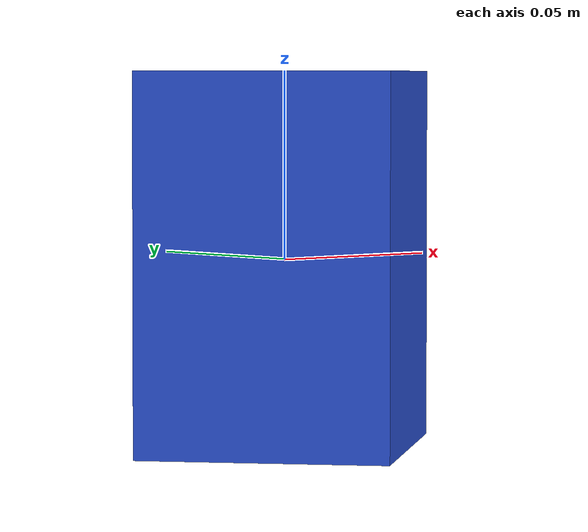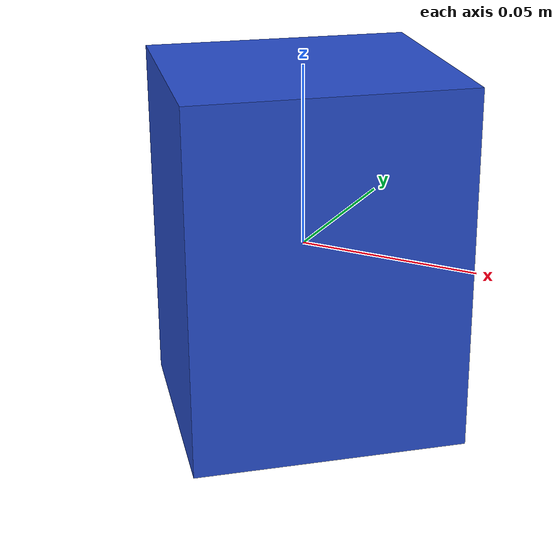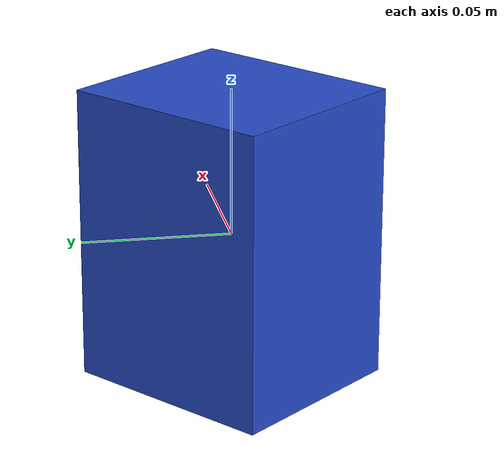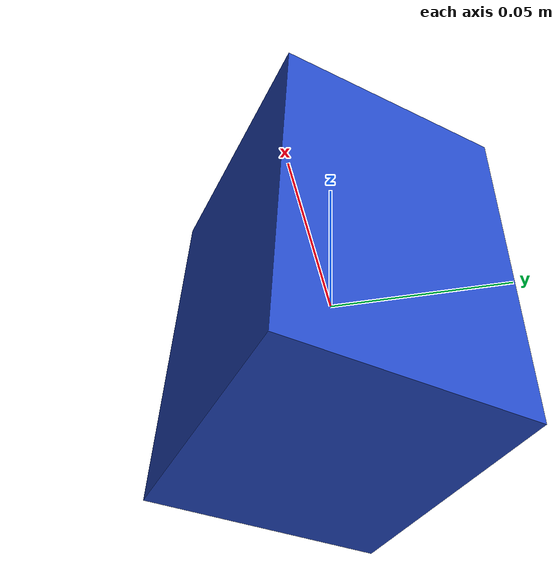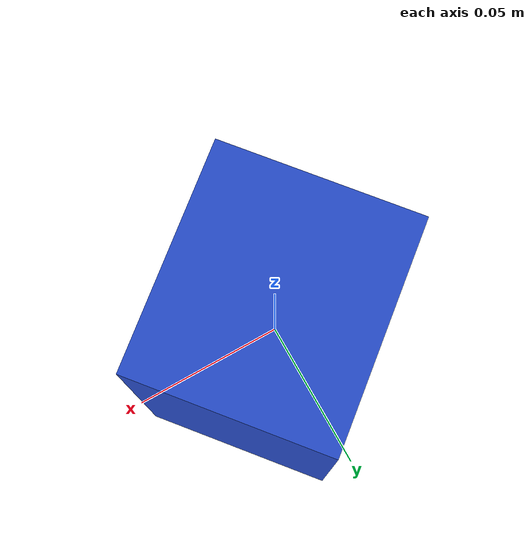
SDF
<sdf version="1.6"><model name="model_4"><static>true</static><link name="link"><pose>0 0 0 0 0 2.2589210948849803</pose><collision name="collision"><geometry><box><size>0.06649675366940286 0.07499137828573293 0.1</size></box></geometry></collision><visual name="visual"><geometry><box><size>0.06649675366940286 0.07499137828573293 0.1</size></box></geometry><material><script><name>Gazebo/Blue</name><uri>file://media/materials/scripts/gazebo.material</uri></script></material></visual></link></model></sdf>
